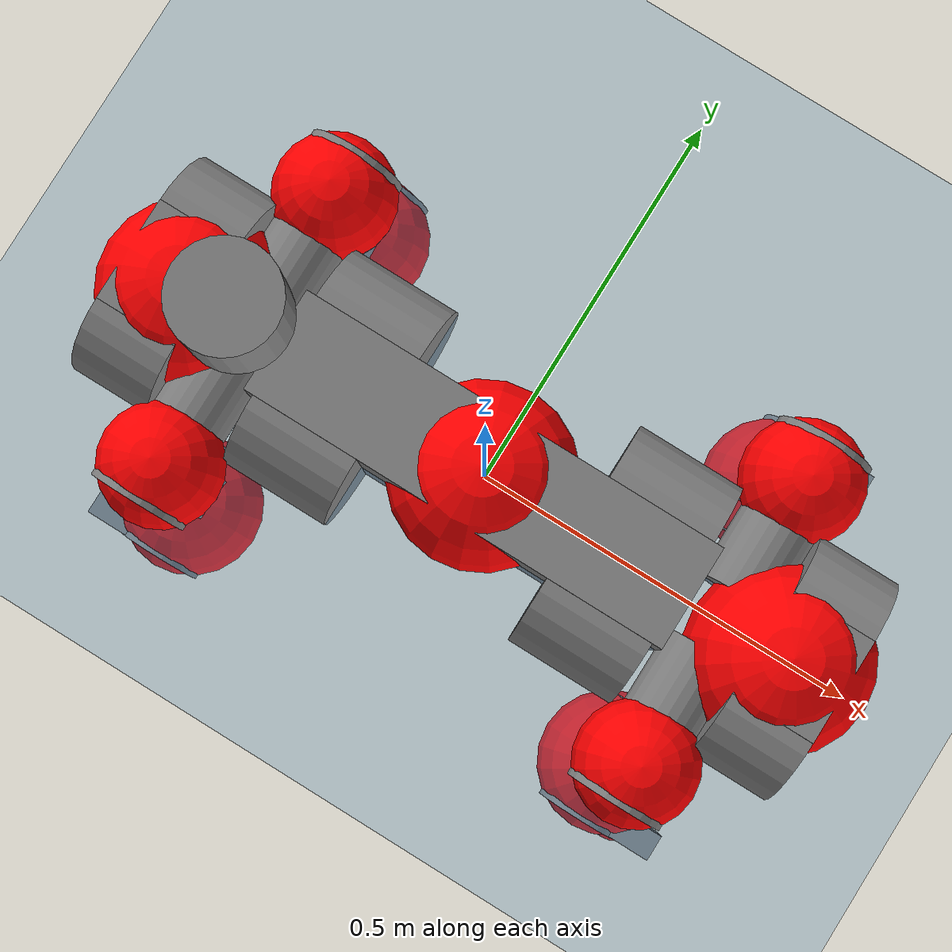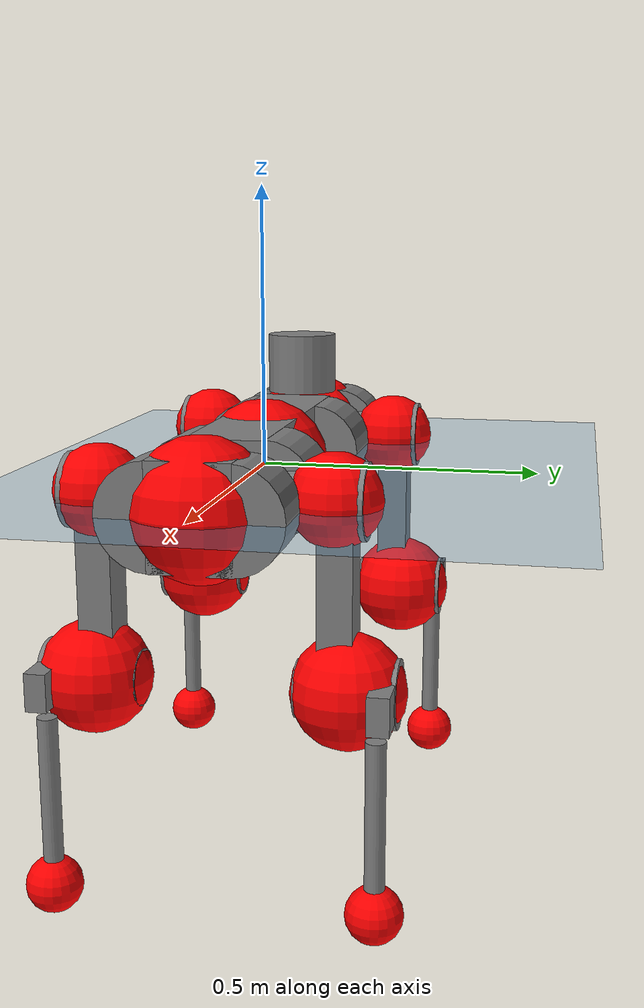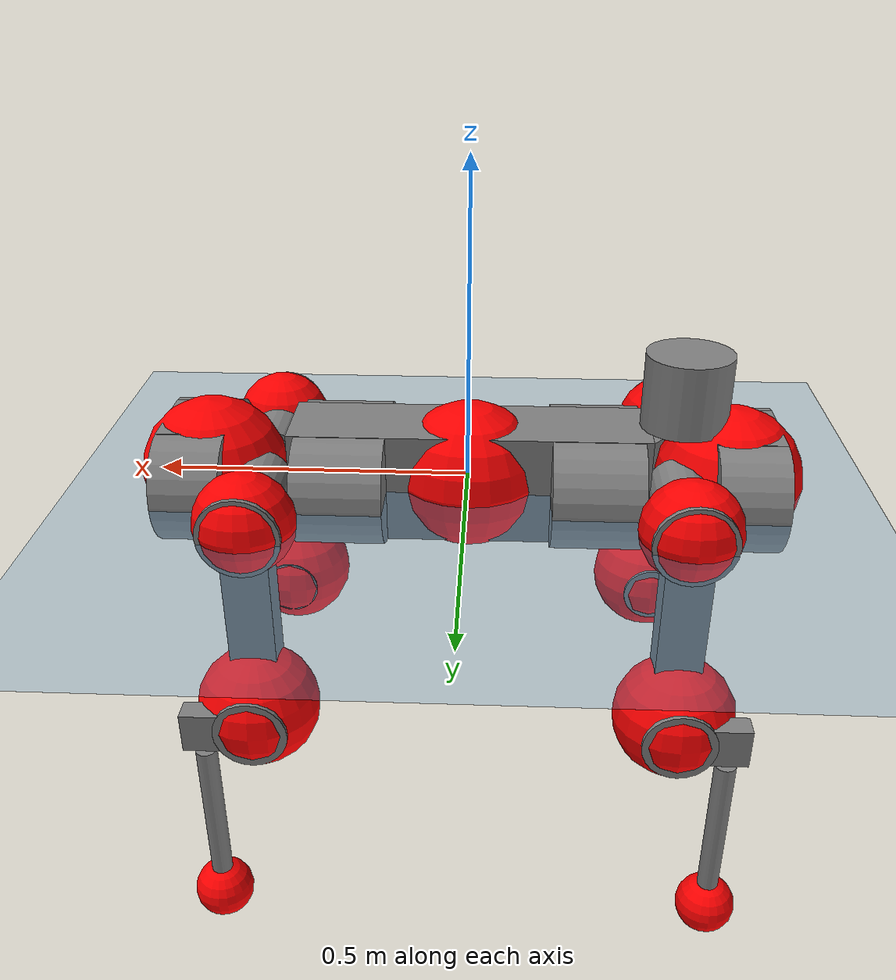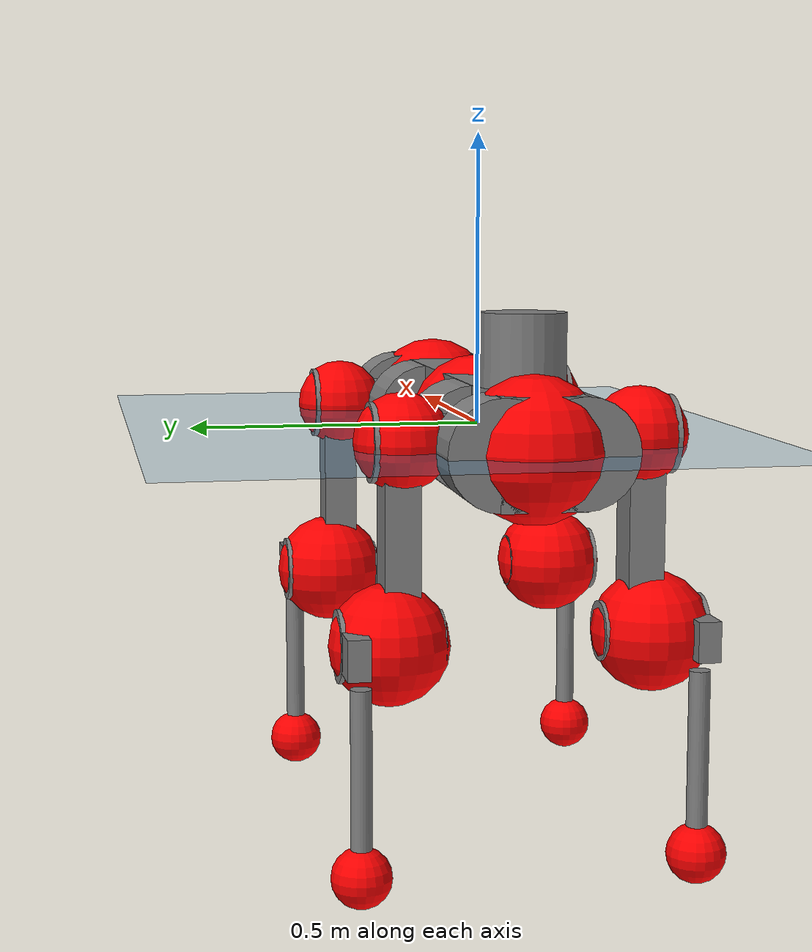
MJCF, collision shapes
<mujoco model="anymal_c">
  <compiler angle="radian" assetdir="assets" balanceinertia="true" inertiafromgeom="false"/>

  <option timestep="0.005" density="1.2" viscosity="2e-05"/>

  <size nkey="1"/>

  <visual>
    <quality shadowsize="8192"/>
    <map shadowclip="0.5"/>
  </visual>

  <default>
    <default class="/">
      <material specular="0" shininess="0.25"/>
      <geom contype="0" conaffinity="0" group="1" solref="-1000 -80"/>
      <site size="0.01 0.005 0.005" group="5"/>
      <general forcelimited="true" forcerange="-80 80" biastype="affine" gainprm="80" biasprm="0 -80 -2"/>
      <default class="anymal_c">
        <joint armature="0.01" damping="0.01" frictionloss="0.1"/>
        <default class="visual">
          <geom type="mesh" group="2"/>
          <default class="visual_zflip"/>
        </default>
        <default class="collision">
          <geom type="cylinder" group="3"/>
          <default class="foot">
            <geom size="0.03 0 0" type="sphere" condim="6" priority="1" friction="0.8 0.02 0.01" solimp="0.015 1 0.03"/>
          </default>
        </default>
      </default>
      <default class="reward_collision_sphere">
        <geom group="5" rgba="1 0 0 1"/>
      </default>
    </default>
  </default>

  <asset>
    <texture type="skybox" colorspace="auto" name="//unnamed_texture_0" builtin="gradient" rgb1="0.95 0.95 0.95" rgb2="0.95 0.95 0.95" width="100" height="600"/>
    <texture type="2d" colorspace="auto" name="texplane" builtin="checker" rgb1="0.345 0.575 0.748" rgb2="0.345 0.575 0.748" markrgb="1 1 1" width="512" height="512"/>
    <texture type="2d" colorspace="linear" name="base" file="base.png"/>
    <texture type="2d" colorspace="linear" name="top_shell" file="top_shell.png"/>
    <texture type="2d" colorspace="linear" name="bottom_shell" file="bottom_shell.png"/>
    <texture type="2d" colorspace="linear" name="remote" file="remote.png"/>
    <texture type="2d" colorspace="linear" name="hatch" file="hatch.png"/>
    <texture type="2d" colorspace="linear" name="handle" file="handle.png"/>
    <texture type="2d" colorspace="linear" name="face" file="face.png"/>
    <texture type="2d" colorspace="linear" name="battery" file="battery.png"/>
    <texture type="2d" colorspace="linear" name="lidar_cage" file="lidar_cage.png"/>
    <texture type="2d" colorspace="linear" name="depth_camera" file="depth_camera.png"/>
    <texture type="2d" colorspace="linear" name="wide_angle_camera" file="wide_angle_camera.png"/>
    <texture type="2d" colorspace="linear" name="lidar" file="lidar.png"/>
    <texture type="2d" colorspace="linear" name="drive" file="drive.png"/>
    <texture type="2d" colorspace="linear" name="hip_l" file="hip_l.png"/>
    <texture type="2d" colorspace="linear" name="shank_l" file="shank_l.png"/>
    <texture type="2d" colorspace="linear" name="foot" file="foot.png"/>
    <texture type="2d" colorspace="linear" name="thigh" file="thigh.png"/>
    <texture type="2d" colorspace="linear" name="shank_r" file="shank_r.png"/>
    <texture type="2d" colorspace="linear" name="hip_r" file="hip_r.png"/>
    <material name="MatPlane" class="/" texture="texplane" texuniform="true" texrepeat="2 2" specular="0.9" shininess="0.5"/>
    <material name="black_plastic" class="/" rgba="0.007 0.007 0.007 1"/>
    <material name="green" class="/" rgba="0.052 0.178 0.033 1"/>
    <material name="red" class="/" rgba="0.178 0.006 0.005 1"/>
    <material name="yellow" class="/" rgba="0.178 0.119 0.006 1"/>
    <material name="lwl" class="/" rgba="0.8 0.8 0.8 1"/>
    <material name="base" class="/" texture="base"/>
    <material name="top_shell" class="/" texture="top_shell"/>
    <material name="bottom_shell" class="/" texture="bottom_shell"/>
    <material name="hip_l" class="/" texture="hip_l"/>
    <material name="thigh" class="/" texture="thigh"/>
    <material name="shank_l" class="/" texture="shank_l"/>
    <material name="foot" class="/" texture="foot"/>
    <material name="hip_r" class="/" texture="hip_r"/>
    <material name="shank" class="/" texture="shank_r"/>
    <material name="hatch" class="/" texture="hatch"/>
    <material name="remote" class="/" texture="remote"/>
    <material name="handle" class="/" texture="handle"/>
    <material name="face" class="/" texture="face"/>
    <material name="depth_camera" class="/" texture="depth_camera"/>
    <material name="wide_angle_camera" class="/" texture="wide_angle_camera"/>
    <material name="battery" class="/" texture="battery"/>
    <material name="lidar_cage" class="/" texture="lidar_cage"/>
    <material name="lidar" class="/" texture="lidar"/>
    <material name="drive" class="/" texture="drive"/>
    <mesh name="base_0" class="/" file="base_0.obj"/>
    <mesh name="base_1" class="/" file="base_1.obj"/>
    <mesh name="base_2" class="/" file="base_2.obj"/>
    <mesh name="base_3" class="/" file="base_3.obj"/>
    <mesh name="base_4" class="/" file="base_4.obj"/>
    <mesh name="base_5" class="/" file="base_5.obj"/>
    <mesh name="top_shell" class="/" file="top_shell.obj"/>
    <mesh name="bottom_shell" class="/" file="bottom_shell.obj"/>
    <mesh name="remote" class="/" file="remote.obj"/>
    <mesh name="handle" class="/" file="handle.obj"/>
    <mesh name="face" class="/" file="face.obj"/>
    <mesh name="wide_angle_camera" class="/" file="wide_angle_camera.obj"/>
    <mesh name="depth_camera" class="/" file="depth_camera.obj"/>
    <mesh name="battery" class="/" file="battery.obj"/>
    <mesh name="lidar_cage" class="/" file="lidar_cage.obj"/>
    <mesh name="lidar" class="/" file="lidar.obj"/>
    <mesh name="drive" class="/" file="drive.obj"/>
    <mesh name="hip_l" class="/" file="hip_l.obj"/>
    <mesh name="thigh" class="/" file="thigh.obj"/>
    <mesh name="shank_l" class="/" file="shank_l.obj"/>
    <mesh name="foot" class="/" file="foot.obj"/>
    <mesh name="hip_r" class="/" file="hip_r.obj"/>
    <mesh name="hatch" class="/" file="hatch.obj"/>
    <mesh name="shank_r" class="/" file="shank_r.obj"/>
  </asset>

  <worldbody>
    <geom name="floor" class="/" size="100 100 0.125" type="plane" group="0" material="MatPlane"/>
    <light name="toplight_shadow" class="/" pos="0 0 5" dir="0.0990148 0.0990148 -0.990148" type="directional" ambient="0.04 0.04 0.04" diffuse="0.55 0.55 0.55" specular="0.12 0.12 0.12"/>
    <light name="toplight_fill" class="/" pos="0 0 5" dir="0.0990148 0.0990148 -0.990148" type="directional" castshadow="false" ambient="0.04 0.04 0.04" diffuse="0.3 0.3 0.3" specular="0.08 0.08 0.08"/>
    <body name="trunk" childclass="anymal_c" pos="-0.00232677 0.000347398 0.00269945" quat="0.999999 0.000851861 0.000461434 -0.000928292">
      <inertial pos="0.00475216 6.43888e-05 0.0526128" quat="0.501505 0.497656 0.493609 0.50713" mass="17.4735" diaginertia="0.417574 0.363849 0.380676"/>
      <joint name="//unnamed_joint_0" type="free" armature="0" damping="0" frictionloss="0"/>
      <geom name="//unnamed_geom_1" class="visual" material="green" mesh="base_0"/>
      <geom name="//unnamed_geom_2" class="visual" material="yellow" mesh="base_1"/>
      <geom name="//unnamed_geom_3" class="visual" material="red" mesh="base_2"/>
      <geom name="//unnamed_geom_4" class="visual" material="black_plastic" mesh="base_3"/>
      <geom name="//unnamed_geom_5" class="visual" material="lwl" mesh="base_4"/>
      <geom name="//unnamed_geom_6" class="visual" material="base" mesh="base_5"/>
      <geom name="trunk_1" class="collision" size="0.283584 0.0684513 0.0880089" type="box"/>
      <geom name="trunk_2" class="collision" size="0.0880089 0.070896" pos="0.200071 0.0628222 0" quat="0.707107 0 0.707107 0"/>
      <geom name="trunk_3" class="collision" size="0.0880089 0.070896" pos="-0.200071 0.0628222 0" quat="0.707107 0 0.707107 0"/>
      <geom name="trunk_4" class="collision" size="0.0880089 0.070896" pos="0.200071 -0.0628222 0" quat="0.707107 0 0.707107 0"/>
      <geom name="trunk_5" class="collision" size="0.0880089 0.070896" pos="-0.200071 -0.0628222 0" quat="0.707107 0 0.707107 0"/>
      <geom name="//unnamed_geom_12" class="visual" material="top_shell" mesh="top_shell"/>
      <geom name="//unnamed_geom_13" class="visual" material="bottom_shell" mesh="bottom_shell"/>
      <geom name="//unnamed_geom_14" class="visual" material="remote" mesh="remote"/>
      <geom name="//unnamed_geom_15" class="visual" material="handle" mesh="handle"/>
      <geom name="//unnamed_geom_16" class="visual" pos="0.381286 0 0" quat="1 0 0 0" material="face" mesh="face"/>
      <geom name="trunk_6" class="collision" size="0.0537832 0.0684513 0.0880089" pos="0.431878 0 0" type="box"/>
      <geom name="//unnamed_geom_18" class="collision" size="0.0880089 0.0537832" pos="0.431878 0.0628222 0" quat="0.707107 0 0.707107 0"/>
      <geom name="//unnamed_geom_19" class="collision" size="0.0880089 0.0537832" pos="0.431878 -0.0628222 0" quat="0.707107 0 0.707107 0"/>
      <geom name="//unnamed_geom_20" class="visual" pos="0.424666 0 -0.0340888" quat="0.965926 0 0.258819 0" material="depth_camera" mesh="depth_camera"/>
      <geom name="//unnamed_geom_21" class="visual" pos="0.471893 0 0.016711" material="wide_angle_camera" mesh="wide_angle_camera"/>
      <geom name="//unnamed_geom_22" class="visual_zflip" pos="-0.381286 0 0" quat="0 0 0 1" material="face" mesh="face"/>
      <geom name="trunk_7" class="collision" size="0.0537832 0.0684513 0.0880089" pos="-0.431878 0 0" quat="0 0 0 1" type="box"/>
      <geom name="//unnamed_geom_24" class="collision" size="0.0880089 0.0537832" pos="-0.431878 -0.0628222 0" quat="0 -0.707107 0 0.707107"/>
      <geom name="//unnamed_geom_25" class="collision" size="0.0880089 0.0537832" pos="-0.431878 0.0628222 0" quat="0 -0.707107 0 0.707107"/>
      <geom name="//unnamed_geom_26" class="visual" pos="-0.424666 0 -0.0340888" quat="0 -0.258819 0 0.965926" material="depth_camera" mesh="depth_camera"/>
      <geom name="//unnamed_geom_27" class="visual_zflip" pos="-0.471893 0 0.016711" quat="0 0 0 1" material="wide_angle_camera" mesh="wide_angle_camera"/>
      <geom name="//unnamed_geom_28" class="visual" material="battery" mesh="battery"/>
      <geom name="//unnamed_geom_29" class="visual" pos="0 0.0683338 0.0309356" quat="0.683013 -0.183013 0.183013 0.683013" material="depth_camera" mesh="depth_camera"/>
      <geom name="//unnamed_geom_30" class="visual" pos="0 -0.0683338 0.0309356" quat="0.683013 0.183013 0.183013 -0.683013" material="depth_camera" mesh="depth_camera"/>
      <geom name="//unnamed_geom_31" class="visual" pos="-0.334832 0 0.0820481" quat="1 0 0 0" material="lidar_cage" mesh="lidar_cage"/>
      <geom name="trunk_8" class="collision" size="0.0684513 0.0586726" pos="-0.334832 0 0.149026"/>
      <geom name="//unnamed_geom_33" class="visual" pos="-0.334832 -8.80405e-06 0.158738" quat="0.707107 0 0 -0.707107" material="lidar" mesh="lidar"/>
      <geom name="//unnamed_geom_34" class="visual" pos="0.275869 0.0934135 -3.77503e-09" quat="0.258819 0.965926 0 0" material="drive" mesh="drive"/>
      <geom name="//unnamed_geom_35" class="visual" pos="0.275869 -0.0934135 3.77503e-09" quat="0.258819 -0.965926 0 0" material="drive" mesh="drive"/>
      <geom name="//unnamed_geom_36" class="visual" pos="-0.275869 0.0934135 3.77503e-09" quat="0 0 0.965926 -0.258819" material="drive" mesh="drive"/>
      <geom name="//unnamed_geom_37" class="visual" pos="-0.275869 -0.0934135 -3.77503e-09" quat="0 0 -0.965926 -0.258819" material="drive" mesh="drive"/>
      <geom name="//unnamed_geom_38" class="visual" pos="0.106705 0 0.0814899" quat="1 0 0 0" material="hatch" mesh="hatch"/>
      <geom name="//unnamed_geom_39" class="reward_collision_sphere" size="0.117345"/>
      <geom name="//unnamed_geom_40" class="reward_collision_sphere" size="0.117345" pos="0.413941 0 0"/>
      <geom name="//unnamed_geom_41" class="reward_collision_sphere" size="0.117345" pos="-0.413941 0 0"/>
      <site name="imu" pos="0.224413 0.0087095 0.0558963" size="0.00977876"/>
      <camera name="track" pos="0 -1.79492 0" quat="0.707107 0.707107 0 0" mode="trackcom"/>
      <camera name="ego_camera" pos="0.413941 0 -0.044652" quat="-0.5 -0.5 0.5 0.5"/>
      <body name="LF_HIP" pos="0.275035 0.0924812 -0.00117351" quat="0.259176 0.96583 0.000160166 -0.000178118">
        <inertial pos="0.0521842 -0.0146814 -0.00906379" quat="-0.129598 0.709396 -0.136206 0.679272" mass="2.76453" diaginertia="0.00393415 0.00292942 0.0059144"/>
        <joint name="LF_HAA" pos="0 0 0" axis="1 -0.000454639 -0.000119654" range="-0.718335 0.543651" armature="0.00940616" damping="0.0200341" frictionloss="0.0891754"/>
        <geom name="//unnamed_geom_42" class="visual" pos="0 -0.000222068 3.64744e-05" quat="0.258819 -0.965926 0 0" material="hip_l" mesh="hip_l"/>
        <geom name="//unnamed_geom_43" class="visual" pos="0.0551001 -0.0665482 -0.0400403" quat="0.183013 -0.683013 0.683013 0.183013" material="drive" mesh="drive"/>
        <geom name="//unnamed_geom_44" class="collision" size="0.0488938 0.0684513" pos="0.0551001 -0.0107334 -0.00770805" quat="-0.353553 -0.612372 0.612372 -0.353553"/>
        <body name="LF_THIGH" pos="0.0529915 -0.0661477 -0.0453267" quat="0.183088 -0.683037 0.683015 0.182836">
          <inertial pos="0.0279146 0.000324957 -0.271844" quat="0.993558 -0.00289584 -0.0767626 0.083313" mass="2.81461" diaginertia="0.0198106 0.0178054 0.00748088"/>
          <joint name="LF_HFE" pos="0 0 0" axis="0.999973 0.00722413 -0.0016526" stiffness="0.00137864" range="-3.14307 3.17539" armature="0.00863063" damping="0.0120663" frictionloss="0.0865397"/>
          <geom name="//unnamed_geom_45" class="visual" pos="0.000445859 7.0257e-07 0" quat="0.707107 0 0 -0.707107" material="thigh" mesh="thigh"/>
          <geom name="//unnamed_geom_46" class="collision" size="0.063562 0.039115" pos="0.0367948 0 0" quat="0.5 0.5 -0.5 -0.5"/>
          <geom name="//unnamed_geom_47" class="collision" size="0.0366704 0.0293363 0.138188" pos="0.0275961 0 -0.157749" quat="0.707107 0 0 -0.707107" type="box"/>
          <geom name="//unnamed_geom_48" class="visual" pos="0.0922628 0 -0.318146" quat="1 0 0 0" material="drive" mesh="drive"/>
          <geom name="//unnamed_geom_49" class="collision" size="0.0488938 0.0684513" pos="0.027872 0 -0.318146" quat="0.707107 0 0.707107 0"/>
          <geom name="//unnamed_geom_50" class="reward_collision_sphere" size="0.0782301" pos="0.0229967 0 0"/>
          <body name="LF_SHANK" pos="0.0911499 -7.58589e-05 -0.31737" quat="0.999999 0.000254361 0.000534244 0.000986093">
            <inertial pos="0.00539745 -0.0529349 -0.092682" quat="0.992516 -0.118633 0.000245093 -0.0289468" mass="0.537266" diaginertia="0.00653423 0.00529159 0.00194849"/>
            <joint name="LF_KFE" pos="0 0 0" axis="0.999993 0.00370306 -0.000495143" range="-3.10314 3.12585" armature="0.0110093" damping="0.00969748" frictionloss="0.0935407"/>
            <geom name="//unnamed_geom_51" class="visual" pos="0.000145385 0.0007752 0" quat="0.707107 0 0 -0.707107" material="shank_l" mesh="shank_l"/>
            <geom name="LF_kfe_act" class="collision" size="0.0586726 0.0195575" pos="0.0183974 0 0" quat="0.5 0.5 -0.5 -0.5"/>
            <geom name="//unnamed_geom_53" class="collision" size="0.0562269 0.0330033 0.0185796" pos="0.0183974 -0.051603 0" quat="0.5 0.5 -0.5 -0.5" type="box"/>
            <geom name="//unnamed_geom_54" class="visual" pos="0.0120043 -0.0786817 -0.377276" quat="0.382683 0 0 -0.92388" material="foot" mesh="foot"/>
            <geom name="LF_calf" class="collision" size="0.0171128 0.138127" pos="0.0120043 -0.0789316 -0.188638" quat="0.707107 0 0 -0.707107"/>
            <geom name="LF_foot" class="foot" size="0.0296929" pos="0.0120043 -0.0789316 -0.352159" quat="0.707107 0 0 -0.707107"/>
            <geom name="//unnamed_geom_57" class="reward_collision_sphere" size="0.0977876" pos="-0.0459934 0 0"/>
            <geom name="//unnamed_geom_58" class="reward_collision_sphere" size="0.0488938" pos="0.0120043 -0.0789316 -0.352159"/>
            <site name="LF_foot" class="foot" pos="0.0120043 -0.0789316 -0.352159" quat="0.707107 0 0 -0.707107" size="0.00977876"/>
          </body>
        </body>
      </body>
      <body name="RF_HIP" pos="0.277113 -0.0934972 -0.00226043" quat="0.258661 -0.965968 0.000138561 -0.000345448">
        <inertial pos="0.0502311 0.0164656 -0.0111211" quat="0.142347 0.675939 0.124093 0.712352" mass="2.64931" diaginertia="0.00388723 0.0028855 0.00571887"/>
        <joint name="RF_HAA" pos="0 0 0" axis="0.999997 0.000718129 0.00254423" range="-0.46951 0.713709" armature="0.0094604" damping="0.00512897" frictionloss="0.111088"/>
        <geom name="//unnamed_geom_59" class="visual" pos="0 0.000222066 3.64743e-05" quat="0.258819 0.965926 0 0" material="hip_r" mesh="hip_r"/>
        <geom name="//unnamed_geom_60" class="visual" pos="0.0551001 0.0665482 -0.0400403" quat="0.183013 0.683013 0.683013 -0.183013" material="drive" mesh="drive"/>
        <geom name="//unnamed_geom_61" class="collision" size="0.0488938 0.0684513" pos="0.0551001 0.0107334 -0.00770805" quat="-0.353553 0.612372 0.612372 0.353553"/>
        <body name="RF_THIGH" pos="0.057676 0.0626778 -0.0468331" quat="0.183015 0.683006 0.683022 -0.183001">
          <inertial pos="0.0273972 -0.00268787 -0.276468" quat="0.993998 -0.0054273 -0.071692 0.0824549" mass="2.84085" diaginertia="0.0190207 0.0169516 0.0070168"/>
          <joint name="RF_HFE" pos="0 0 0" axis="1 -4.49389e-05 2.65454e-05" stiffness="0.000216459" range="-3.08986 3.10785" armature="0.00895132" damping="0.00932709" frictionloss="0.111107"/>
          <geom name="//unnamed_geom_62" class="visual" pos="0.000445859 7.0257e-07 0" quat="0.707107 0 0 -0.707107" material="thigh" mesh="thigh"/>
          <geom name="//unnamed_geom_63" class="collision" size="0.063562 0.039115" pos="0.0367948 0 0" quat="0.5 0.5 0.5 0.5"/>
          <geom name="//unnamed_geom_64" class="collision" size="0.0366704 0.0293363 0.138188" pos="0.0275961 0 -0.157749" quat="0.707107 0 0 0.707107" type="box"/>
          <geom name="//unnamed_geom_65" class="visual" pos="0.0922628 0 -0.318146" quat="1 0 0 0" material="drive" mesh="drive"/>
          <geom name="//unnamed_geom_66" class="collision" size="0.0488938 0.0684513" pos="0.027872 0 -0.318146" quat="0.707107 0 0.707107 0"/>
          <geom name="//unnamed_geom_67" class="reward_collision_sphere" size="0.0782301" pos="0.0229967 0 0"/>
          <body name="RF_SHANK" pos="0.0896367 -5.17342e-06 -0.31885" quat="0.999999 -0.000239868 -0.00112327 -6.53732e-05">
            <inertial pos="0.00410155 0.0551165 -0.0901295" quat="0.992475 0.119227 0.00626311 0.0271984" mass="0.57166" diaginertia="0.00699739 0.00525588 0.00195705"/>
            <joint name="RF_KFE" pos="0 0 0" axis="0.999932 0.00608586 0.00990934" stiffness="0.00436097" range="-3.11816 3.09512" armature="0.010182" damping="0.00251814" frictionloss="0.110887"/>
            <geom name="//unnamed_geom_68" class="visual" pos="0.000145384 -0.000775198 0" quat="0.707107 0 0 0.707107" material="shank" mesh="shank_r"/>
            <geom name="RF_kfe_act" class="collision" size="0.0586726 0.0195575" pos="0.0183974 0 0" quat="0.5 0.5 0.5 0.5"/>
            <geom name="//unnamed_geom_70" class="collision" size="0.0562269 0.0330033 0.0185796" pos="0.0183974 0.051603 0" quat="0.5 0.5 0.5 0.5" type="box"/>
            <geom name="//unnamed_geom_71" class="visual" pos="0.0120043 0.0786817 -0.377276" quat="0.382683 0 0 0.92388" material="foot" mesh="foot"/>
            <geom name="RF_calf" class="collision" size="0.0171128 0.138127" pos="0.0120043 0.0789316 -0.188638" quat="0.707107 0 0 0.707107"/>
            <geom name="RF_foot" class="foot" size="0.0282681" pos="0.0120043 0.0789316 -0.352159" quat="0.707107 0 0 0.707107"/>
            <geom name="//unnamed_geom_74" class="reward_collision_sphere" size="0.0977876" pos="-0.0459934 0 0"/>
            <geom name="//unnamed_geom_75" class="reward_collision_sphere" size="0.0488938" pos="0.0120043 0.0789316 -0.352159"/>
            <site name="RF_foot" class="foot" pos="0.0120043 0.0789316 -0.352159" quat="0.707107 0 0 0.707107" size="0.00977876"/>
          </body>
        </body>
      </body>
      <body name="LH_HIP" pos="-0.275897 0.0922351 4.15908e-05" quat="0.000315526 -0.000380064 0.965832 -0.259168">
        <inertial pos="0.0522699 0.0152363 -0.0078336" quat="0.134581 0.677332 0.125648 0.712266" mass="2.56811" diaginertia="0.00367284 0.00275094 0.00544874"/>
        <joint name="LH_HAA" pos="0 0 0" axis="0.999993 0.00149259 0.00340985" range="-0.475294 0.777821" armature="0.00961845" damping="0.0117493" frictionloss="0.0988833"/>
        <geom name="//unnamed_geom_76" class="visual" pos="0 0.000222066 3.64743e-05" quat="-0.258819 -0.965926 0 0" material="hip_r" mesh="hip_r"/>
        <geom name="//unnamed_geom_77" class="visual" pos="0.0551001 0.0665482 -0.0400403" quat="0.183013 0.683013 0.683013 -0.183013" material="drive" mesh="drive"/>
        <geom name="//unnamed_geom_78" class="collision" size="0.0488938 0.0684513" pos="0.0551001 0.0107334 -0.00770805" quat="-0.353553 0.612372 0.612372 0.353553"/>
        <body name="LH_THIGH" pos="0.0551736 0.0633865 -0.0442589" quat="0.182852 0.683802 0.682274 -0.182982">
          <inertial pos="0.0308113 0.00255699 -0.272757" quat="0.992704 -0.00458027 -0.0784588 0.0914485" mass="2.72031" diaginertia="0.0200349 0.0174004 0.00735796"/>
          <joint name="LH_HFE" pos="0 0 0" axis="0.999998 -0.0015717 0.000954556" range="-3.19208 3.10357" armature="0.0106375" damping="0.000171705" frictionloss="0.0955131"/>
          <geom name="//unnamed_geom_79" class="visual" pos="0.000445859 7.0257e-07 0" quat="0.707107 0 0 -0.707107" material="thigh" mesh="thigh"/>
          <geom name="//unnamed_geom_80" class="collision" size="0.063562 0.039115" pos="0.0367948 0 0" quat="0.5 0.5 -0.5 -0.5"/>
          <geom name="//unnamed_geom_81" class="collision" size="0.0366704 0.0293363 0.138188" pos="0.0275961 0 -0.157749" quat="0.707107 0 0 -0.707107" type="box"/>
          <geom name="//unnamed_geom_82" class="visual" pos="0.0922628 0 -0.318146" quat="1 0 0 0" material="drive" mesh="drive"/>
          <geom name="//unnamed_geom_83" class="collision" size="0.0488938 0.0684513" pos="0.027872 0 -0.318146" quat="0.707107 0 0.707107 0"/>
          <geom name="//unnamed_geom_84" class="reward_collision_sphere" size="0.0782301" pos="0.0229967 0 0"/>
          <body name="LH_SHANK" pos="0.0902155 0.00221973 -0.321831" quat="1 -3.1119e-06 1.19686e-05 -0.000202717">
            <inertial pos="0.00756465 0.0547672 -0.0926218" quat="0.993288 0.11224 -0.0103557 0.0259732" mass="0.529705" diaginertia="0.00633915 0.00520586 0.00193811"/>
            <joint name="LH_KFE" pos="0 0 0" axis="0.999985 -0.00423456 -0.00344165" stiffness="0.00819392" range="-3.13944 3.1075" armature="0.00930303" damping="0.00329844" frictionloss="0.0955923"/>
            <geom name="//unnamed_geom_85" class="visual" pos="0.000145384 -0.000775198 0" quat="-0.707107 0 0 -0.707107" material="shank" mesh="shank_r"/>
            <geom name="LH_kfe_act" class="collision" size="0.0586726 0.0195575" pos="0.0183974 0 0" quat="0.5 0.5 -0.5 -0.5"/>
            <geom name="//unnamed_geom_87" class="collision" size="0.0562269 0.0330033 0.0185796" pos="0.0183974 0.051603 0" quat="0.5 0.5 -0.5 -0.5" type="box"/>
            <geom name="//unnamed_geom_88" class="visual" pos="0.0120043 0.0786817 -0.377276" quat="-0.382683 0 0 -0.92388" material="foot" mesh="foot"/>
            <geom name="LH_calf" class="collision" size="0.0171128 0.138127" pos="0.0120043 0.0789316 -0.188638" quat="0.707107 0 0 -0.707107"/>
            <geom name="LH_foot" class="foot" size="0.0342053" pos="0.0120043 0.0789316 -0.352159" quat="0.707107 0 0 -0.707107"/>
            <geom name="//unnamed_geom_91" class="reward_collision_sphere" size="0.0977876" pos="-0.0459934 0 0"/>
            <geom name="//unnamed_geom_92" class="reward_collision_sphere" size="0.0488938" pos="0.0120043 0.0789316 -0.352159"/>
            <site name="LH_foot" class="foot" pos="0.0120043 0.0789316 -0.352159" quat="0.707107 0 0 -0.707107" size="0.00977876"/>
          </body>
        </body>
      </body>
      <body name="RH_HIP" pos="-0.27829 -0.0929161 0.00267007" quat="4.22752e-05 -0.000103254 -0.965914 -0.258863">
        <inertial pos="0.0499492 -0.0113979 -0.00793197" quat="-0.122454 0.711956 -0.122922 0.680452" mass="2.6859" diaginertia="0.00398408 0.00291042 0.00582557"/>
        <joint name="RH_HAA" pos="0 0 0" axis="0.999995 -0.00176377 0.00276208" range="-0.713831 0.541299" armature="0.00838962" damping="0" frictionloss="0.0987146"/>
        <geom name="//unnamed_geom_93" class="visual" pos="0 -0.000222068 3.64744e-05" quat="-0.258819 0.965926 0 0" material="hip_l" mesh="hip_l"/>
        <geom name="//unnamed_geom_94" class="visual" pos="0.0551001 -0.0665482 -0.0400403" quat="-0.183013 0.683013 -0.683013 -0.183013" material="drive" mesh="drive"/>
        <geom name="//unnamed_geom_95" class="collision" size="0.0488938 0.0684513" pos="0.0551001 -0.0107334 -0.00770805" quat="0.353553 0.612372 -0.612372 0.353553"/>
        <body name="RH_THIGH" pos="0.0534616 -0.062546 -0.0459899" quat="-0.183128 0.683073 -0.682943 -0.182935">
          <inertial pos="0.0278667 0.00216069 -0.271892" quat="0.993213 -0.00343439 -0.0811048 0.0832994" mass="2.75989" diaginertia="0.0191632 0.0169759 0.0069998"/>
          <joint name="RH_HFE" pos="0 0 0" axis="0.999955 -0.00939898 -0.000941662" range="-3.09771 3.09651" armature="0.00904258" damping="0.018881" frictionloss="0.0985565"/>
          <geom name="//unnamed_geom_96" class="visual" pos="0.000445859 7.0257e-07 0" quat="0.707107 0 0 -0.707107" material="thigh" mesh="thigh"/>
          <geom name="//unnamed_geom_97" class="collision" size="0.063562 0.039115" pos="0.0367948 0 0" quat="0.5 0.5 0.5 0.5"/>
          <geom name="//unnamed_geom_98" class="collision" size="0.0366704 0.0293363 0.138188" pos="0.0275961 0 -0.157749" quat="0.707107 0 0 0.707107" type="box"/>
          <geom name="//unnamed_geom_99" class="visual" pos="0.0922628 0 -0.318146" quat="1 0 0 0" material="drive" mesh="drive"/>
          <geom name="//unnamed_geom_100" class="collision" size="0.0488938 0.0684513" pos="0.027872 0 -0.318146" quat="0.707107 0 0.707107 0"/>
          <geom name="//unnamed_geom_101" class="reward_collision_sphere" size="0.0782301" pos="0.0229967 0 0"/>
          <body name="RH_SHANK" pos="0.0933584 0.000466722 -0.320608" quat="1 -0.000297417 0.000289401 -7.98263e-05">
            <inertial pos="0.00566073 -0.0575618 -0.0876751" quat="0.992715 -0.117902 -0.00548466 -0.0241913" mass="0.540954" diaginertia="0.00655438 0.00537035 0.00188635"/>
            <joint name="RH_KFE" pos="0 0 0" axis="0.999878 0.0124566 0.00944892" stiffness="0.00255724" range="-3.13173 3.12799" armature="0.00981675" damping="0.00312555" frictionloss="0.11093"/>
            <geom name="//unnamed_geom_102" class="visual" pos="0.000145385 0.0007752 0" quat="0.707107 0 0 -0.707107" material="shank_l" mesh="shank_l"/>
            <geom name="RH_kfe_act" class="collision" size="0.0586726 0.0195575" pos="0.0183974 0 0" quat="0.5 0.5 0.5 0.5"/>
            <geom name="//unnamed_geom_104" class="collision" size="0.0562269 0.0330033 0.0185796" pos="0.0183974 -0.051603 0" quat="0.5 0.5 0.5 0.5" type="box"/>
            <geom name="//unnamed_geom_105" class="visual" pos="0.0120043 -0.0786817 -0.377276" quat="0.382683 0 0 -0.92388" material="foot" mesh="foot"/>
            <geom name="RH_calf" class="collision" size="0.0171128 0.138127" pos="0.0120043 -0.0789316 -0.188638" quat="0.707107 0 0 0.707107"/>
            <geom name="RH_foot" class="foot" size="0.0267266" pos="0.0120043 -0.0789316 -0.352159" quat="0.707107 0 0 0.707107"/>
            <geom name="//unnamed_geom_108" class="reward_collision_sphere" size="0.0977876" pos="-0.0459934 0 0"/>
            <geom name="//unnamed_geom_109" class="reward_collision_sphere" size="0.0488938" pos="0.0120043 -0.0789316 -0.352159"/>
            <site name="RH_foot" class="foot" pos="0.0120043 -0.0789316 -0.352159" quat="0.707107 0 0 0.707107" size="0.00977876"/>
          </body>
        </body>
      </body>
    </body>
  </worldbody>

  <contact>
    <pair class="/" geom1="floor" geom2="LF_foot" name="//unnamed_contact_0"/>
    <pair class="/" geom1="floor" geom2="RF_foot" name="//unnamed_contact_1"/>
    <pair class="/" geom1="floor" geom2="LH_foot" name="//unnamed_contact_2"/>
    <pair class="/" geom1="floor" geom2="RH_foot" name="//unnamed_contact_3"/>
  </contact>

  <actuator>
    <general name="LF_HAA" class="/" joint="LF_HAA" forcerange="-75.6933 75.6933" gainprm="73.5404" biasprm="0 -73.5404 -1.8421"/>
    <general name="LF_HFE" class="/" joint="LF_HFE" forcerange="-81.9853 81.9853" gainprm="73.5404" biasprm="0 -73.5404 -1.8421"/>
    <general name="LF_KFE" class="/" joint="LF_KFE" forcerange="-70.8968 70.8968" gainprm="73.5404" biasprm="0 -73.5404 -1.8421"/>
    <general name="RF_HAA" class="/" joint="RF_HAA" forcerange="-76.6306 76.6306" gainprm="73.5404" biasprm="0 -73.5404 -1.8421"/>
    <general name="RF_HFE" class="/" joint="RF_HFE" forcerange="-83.2519 83.2519" gainprm="73.5404" biasprm="0 -73.5404 -1.8421"/>
    <general name="RF_KFE" class="/" joint="RF_KFE" forcerange="-73.4799 73.4799" gainprm="73.5404" biasprm="0 -73.5404 -1.8421"/>
    <general name="LH_HAA" class="/" joint="LH_HAA" forcerange="-77.6517 77.6517" gainprm="73.5404" biasprm="0 -73.5404 -1.8421"/>
    <general name="LH_HFE" class="/" joint="LH_HFE" forcerange="-74.6812 74.6812" gainprm="73.5404" biasprm="0 -73.5404 -1.8421"/>
    <general name="LH_KFE" class="/" joint="LH_KFE" forcerange="-87.554 87.554" gainprm="73.5404" biasprm="0 -73.5404 -1.8421"/>
    <general name="RH_HAA" class="/" joint="RH_HAA" forcerange="-77.8138 77.8138" gainprm="73.5404" biasprm="0 -73.5404 -1.8421"/>
    <general name="RH_HFE" class="/" joint="RH_HFE" forcerange="-78.5786 78.5786" gainprm="73.5404" biasprm="0 -73.5404 -1.8421"/>
    <general name="RH_KFE" class="/" joint="RH_KFE" forcerange="-84.6022 84.6022" gainprm="73.5404" biasprm="0 -73.5404 -1.8421"/>
  </actuator>

  <sensor>
    <gyro site="imu" name="imu_angular_velocity"/>
    <velocimeter site="imu" name="imu_linear_velocity"/>
    <framelinvel objtype="site" objname="LF_foot" name="LF_foot_global_linear_velocity"/>
    <framelinvel objtype="site" objname="RF_foot" name="RF_foot_global_linear_velocity"/>
    <framelinvel objtype="site" objname="LH_foot" name="LH_foot_global_linear_velocity"/>
    <framelinvel objtype="site" objname="RH_foot" name="RH_foot_global_linear_velocity"/>
  </sensor>

  <keyframe>
    <key name="home" qpos="0 0 0.55 1 0 0 0 0 0.4 -0.8 0 -0.4 0.8 0 -0.4 0.8 0 0.4 -0.8"/>
  </keyframe>
</mujoco>
